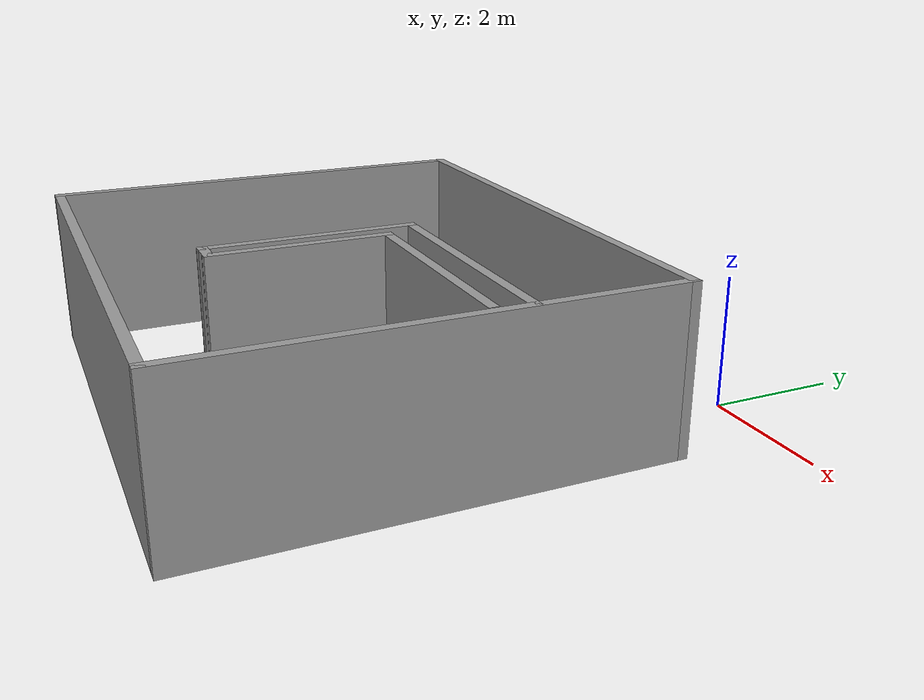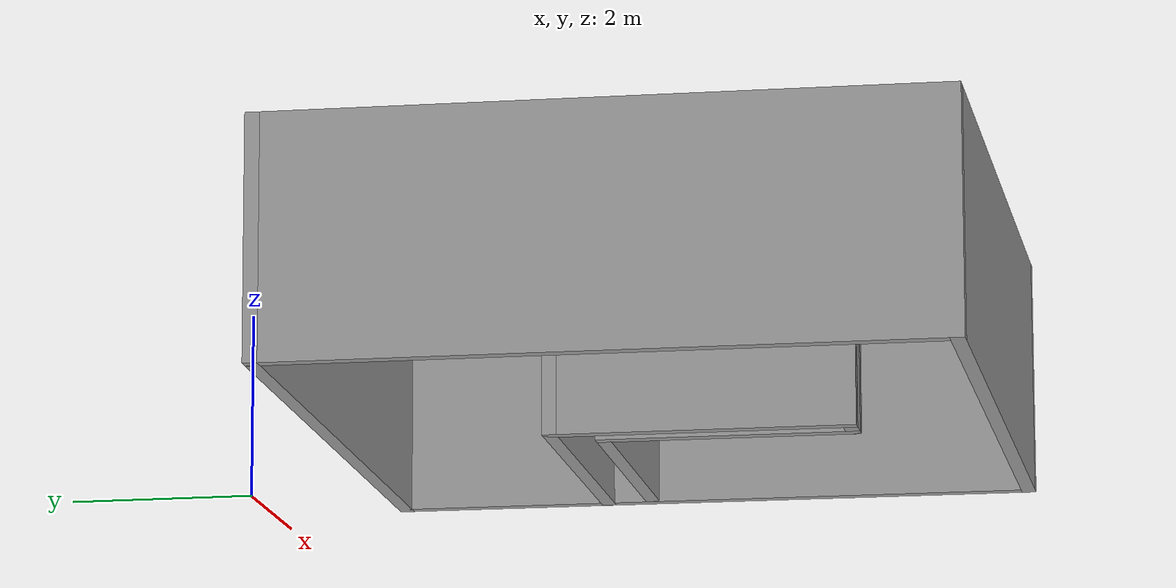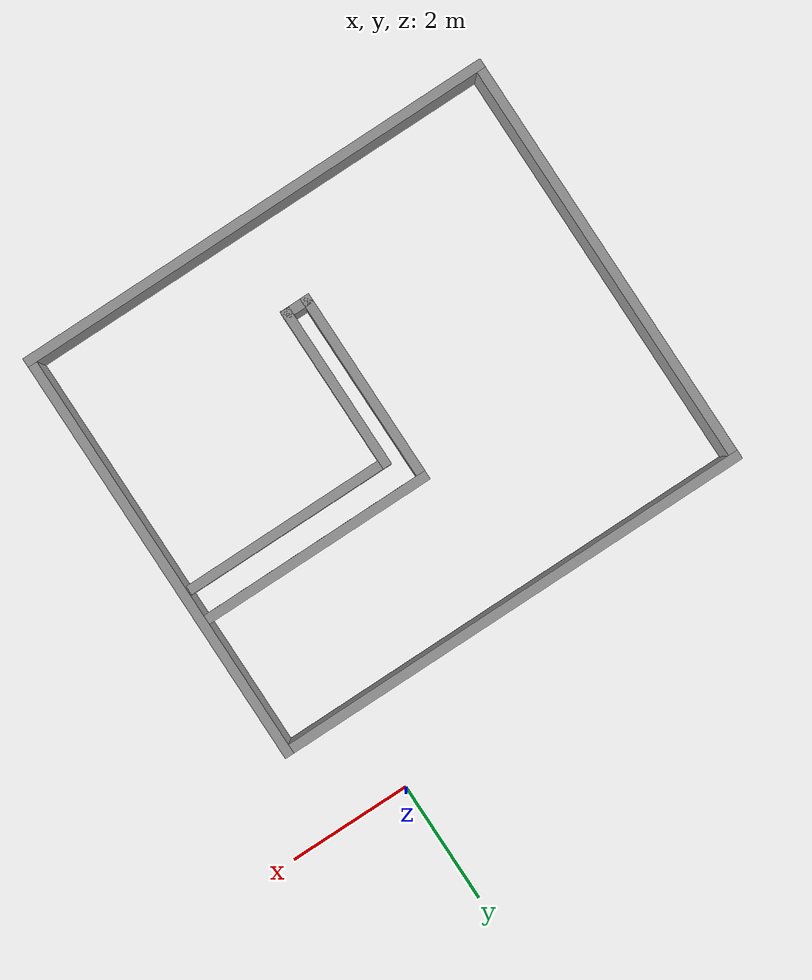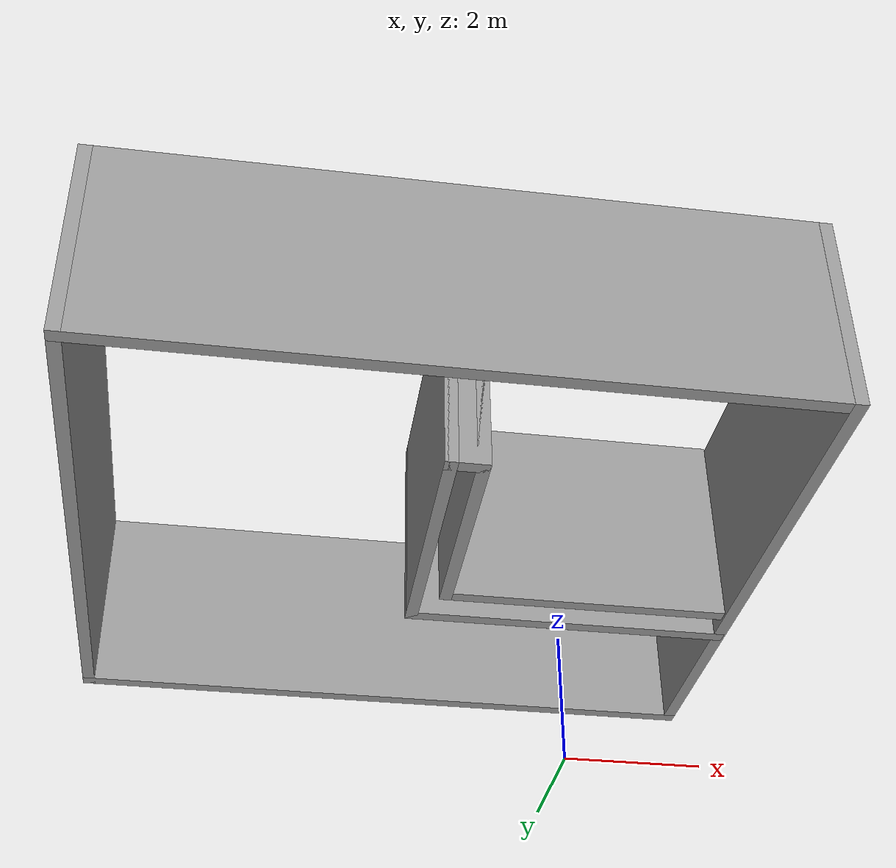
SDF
<?xml version='1.0'?>
<sdf version='1.7'>
  <model name='Marker_World_6'>
    <pose>-2.81772 -4.20756 0 0 -0 0</pose>
    <link name='Wall_16'>
      <collision name='Wall_16_Collision'>
        <geometry>
          <box>
            <size>8 0.15 2.5</size>
          </box>
        </geometry>
        <pose>0 0 1.25 0 -0 0</pose>
      </collision>
      <visual name='Wall_16_Visual'>
        <pose>0 0 1.25 0 -0 0</pose>
        <geometry>
          <box>
            <size>8 0.15 2.5</size>
          </box>
        </geometry>
        <material>
          <script>
            <uri>file://media/materials/scripts/gazebo.material</uri>
            <name>Gazebo/Grey</name>
          </script>
          <ambient>1 1 1 1</ambient>
        </material>
        <meta>
          <layer>0</layer>
        </meta>
      </visual>
      <pose>0 -4.13255 0 0 -0 0</pose>
    </link>
    <link name='Wall_17'>
      <collision name='Wall_17_Collision'>
        <geometry>
          <box>
            <size>7 0.15 2.5</size>
          </box>
        </geometry>
        <pose>0 0 1.25 0 -0 0</pose>
      </collision>
      <visual name='Wall_17_Visual'>
        <pose>0 0 1.25 0 -0 0</pose>
        <geometry>
          <box>
            <size>7 0.15 2.5</size>
          </box>
        </geometry>
        <material>
          <script>
            <uri>file://media/materials/scripts/gazebo.material</uri>
            <name>Gazebo/Grey</name>
          </script>
          <ambient>1 1 1 1</ambient>
        </material>
        <meta>
          <layer>0</layer>
        </meta>
      </visual>
      <pose>3.925 -0.707555 0 0 -0 1.5708</pose>
    </link>
    <link name='Wall_18'>
      <collision name='Wall_18_Collision'>
        <geometry>
          <box>
            <size>8 0.15 2.5</size>
          </box>
        </geometry>
        <pose>0 0 1.25 0 -0 0</pose>
      </collision>
      <visual name='Wall_18_Visual'>
        <pose>0 0 1.25 0 -0 0</pose>
        <geometry>
          <box>
            <size>8 0.15 2.5</size>
          </box>
        </geometry>
        <material>
          <script>
            <uri>file://media/materials/scripts/gazebo.material</uri>
            <name>Gazebo/Grey</name>
          </script>
          <ambient>1 1 1 1</ambient>
        </material>
        <meta>
          <layer>0</layer>
        </meta>
      </visual>
      <pose>0 2.71745 0 0 -0 3.14159</pose>
    </link>
    <link name='Wall_19'>
      <collision name='Wall_19_Collision'>
        <geometry>
          <box>
            <size>7 0.15 2.5</size>
          </box>
        </geometry>
        <pose>0 0 1.25 0 -0 0</pose>
      </collision>
      <visual name='Wall_19_Visual'>
        <pose>0 0 1.25 0 -0 0</pose>
        <geometry>
          <box>
            <size>7 0.15 2.5</size>
          </box>
        </geometry>
        <material>
          <script>
            <uri>file://media/materials/scripts/gazebo.material</uri>
            <name>Gazebo/Grey</name>
          </script>
          <ambient>1 1 1 1</ambient>
        </material>
        <meta>
          <layer>0</layer>
        </meta>
      </visual>
      <pose>-3.925 -0.707555 0 0 -0 -1.5708</pose>
    </link>
    <link name='Wall_21'>
      <collision name='Wall_21_Collision'>
        <geometry>
          <box>
            <size>4 0.15 2.5</size>
          </box>
        </geometry>
        <pose>0 0 1.25 0 -0 0</pose>
      </collision>
      <visual name='Wall_21_Visual'>
        <pose>0 0 1.25 0 -0 0</pose>
        <geometry>
          <box>
            <size>4 0.15 2.5</size>
          </box>
        </geometry>
        <material>
          <script>
            <uri>file://media/materials/scripts/gazebo.material</uri>
            <name>Gazebo/Grey</name>
          </script>
          <ambient>1 1 1 1</ambient>
        </material>
        <meta>
          <layer>0</layer>
        </meta>
      </visual>
      <pose>1.98041 0.461576 0 0 -0 3.14159</pose>
    </link>
    <link name='Wall_22'>
      <collision name='Wall_22_Collision'>
        <geometry>
          <box>
            <size>3.25 0.15 2.5</size>
          </box>
        </geometry>
        <pose>0 0 1.25 0 -0 0</pose>
      </collision>
      <visual name='Wall_22_Visual'>
        <pose>0 0 1.25 0 -0 0</pose>
        <geometry>
          <box>
            <size>3.25 0.15 2.5</size>
          </box>
        </geometry>
        <material>
          <script>
            <uri>file://media/materials/scripts/gazebo.material</uri>
            <name>Gazebo/Grey</name>
          </script>
          <ambient>1 1 1 1</ambient>
        </material>
        <meta>
          <layer>0</layer>
        </meta>
      </visual>
      <pose>0.055413 -1.08842 0 0 -0 -1.5708</pose>
    </link>
    <link name='Wall_23'>
      <collision name='Wall_23_Collision'>
        <geometry>
          <box>
            <size>0.5 0.15 2.5</size>
          </box>
        </geometry>
        <pose>0 0 1.25 0 -0 0</pose>
      </collision>
      <visual name='Wall_23_Visual'>
        <pose>0 0 1.25 0 -0 0</pose>
        <geometry>
          <box>
            <size>0.5 0.15 2.5</size>
          </box>
        </geometry>
        <material>
          <script>
            <uri>file://media/materials/scripts/gazebo.material</uri>
            <name>Gazebo/Grey</name>
          </script>
          <ambient>1 1 1 1</ambient>
        </material>
        <meta>
          <layer>0</layer>
        </meta>
      </visual>
      <pose>0.230413 -2.63842 0 0 -0 0</pose>
    </link>
    <link name='Wall_24'>
      <collision name='Wall_24_Collision'>
        <geometry>
          <box>
            <size>2.75 0.15 2.5</size>
          </box>
        </geometry>
        <pose>0 0 1.25 0 -0 0</pose>
      </collision>
      <visual name='Wall_24_Visual'>
        <pose>0 0 1.25 0 -0 0</pose>
        <geometry>
          <box>
            <size>2.75 0.15 2.5</size>
          </box>
        </geometry>
        <material>
          <script>
            <uri>file://media/materials/scripts/gazebo.material</uri>
            <name>Gazebo/Grey</name>
          </script>
          <ambient>1 1 1 1</ambient>
        </material>
        <meta>
          <layer>0</layer>
        </meta>
      </visual>
      <pose>0.405413 -1.33842 0 0 -0 1.5708</pose>
    </link>
    <link name='Wall_25'>
      <collision name='Wall_25_Collision'>
        <geometry>
          <box>
            <size>3.5 0.15 2.5</size>
          </box>
        </geometry>
        <pose>0 0 1.25 0 -0 0</pose>
      </collision>
      <visual name='Wall_25_Visual'>
        <pose>0 0 1.25 0 -0 0</pose>
        <geometry>
          <box>
            <size>3.5 0.15 2.5</size>
          </box>
        </geometry>
        <material>
          <script>
            <uri>file://media/materials/scripts/gazebo.material</uri>
            <name>Gazebo/Grey</name>
          </script>
          <ambient>1 1 1 1</ambient>
        </material>
        <meta>
          <layer>0</layer>
        </meta>
      </visual>
      <pose>2.08041 -0.038424 0 0 -0 0</pose>
    </link>
    <static>1</static>
  </model>
</sdf>
